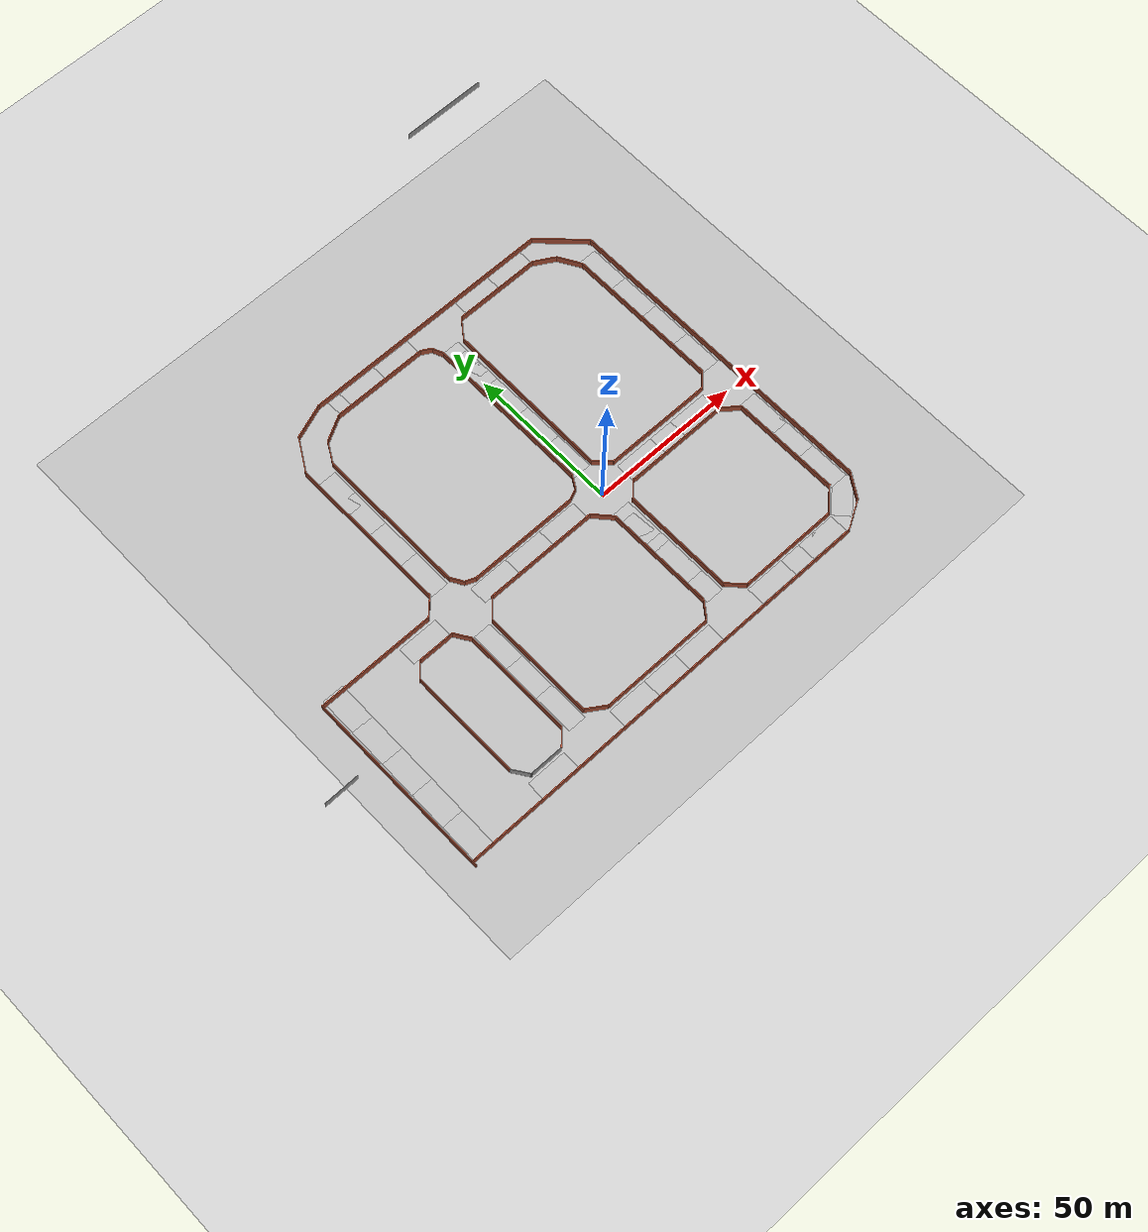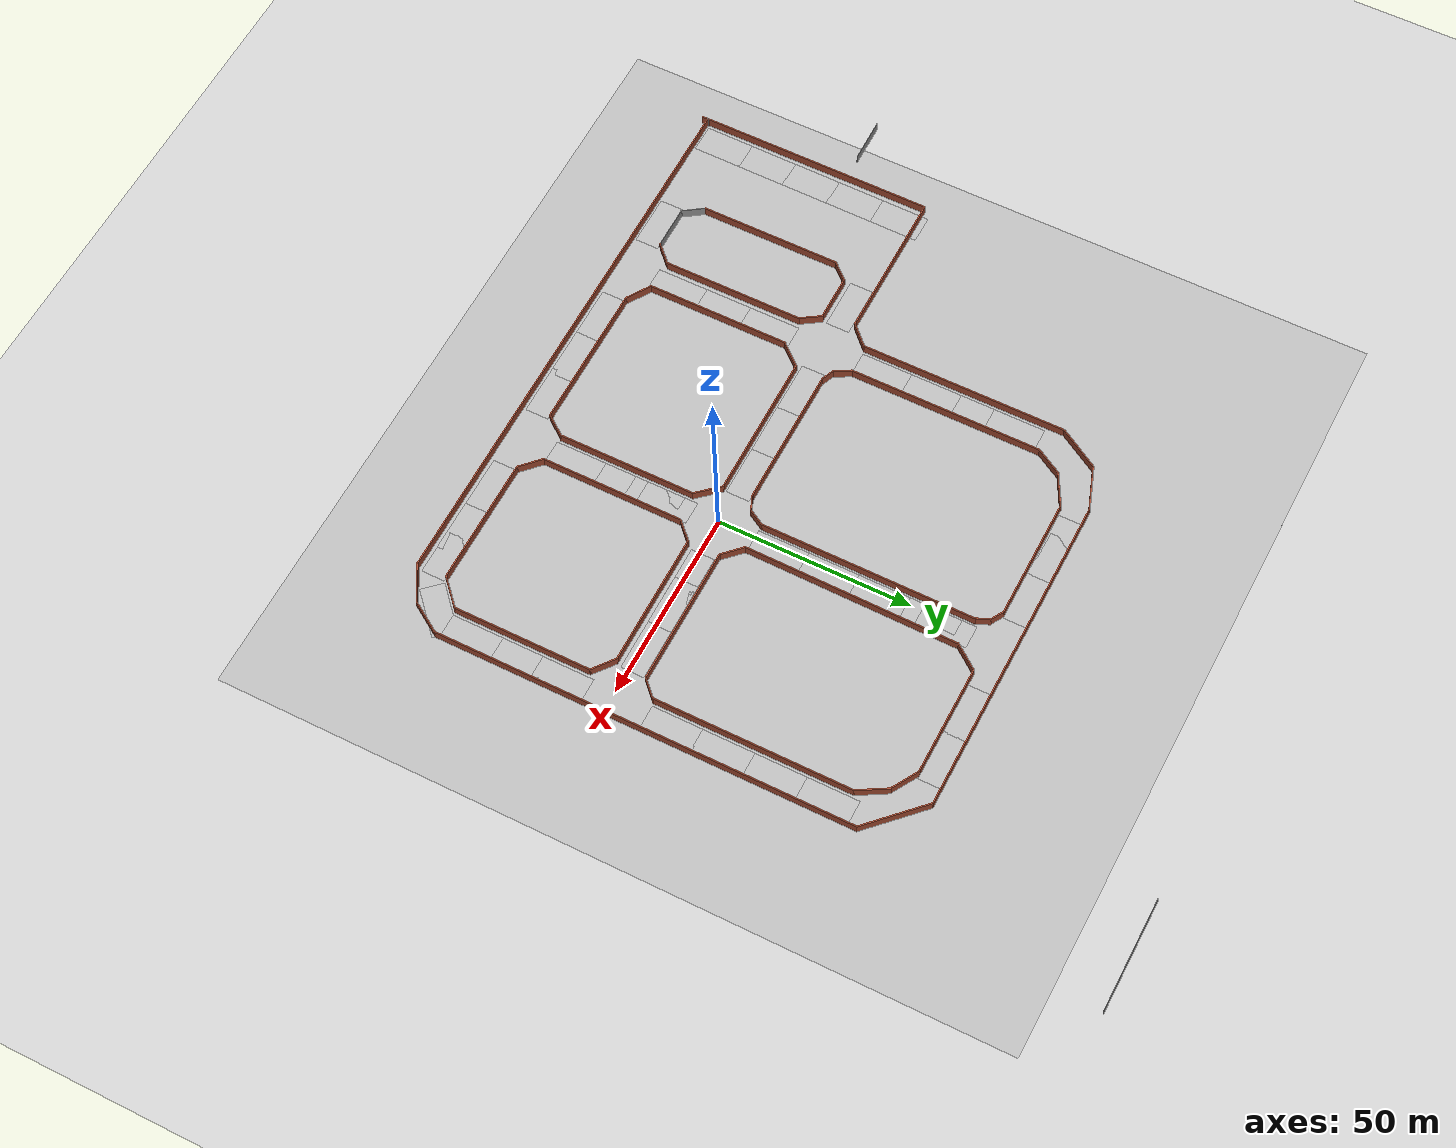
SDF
<sdf version="1.6">
 <world name="default">
  <light name="sun" type="directional">
   <pose>0 0 10 0 -0 0</pose>
   <diffuse>0.8 0.8 0.8 1</diffuse>
   <specular>0.2 0.2 0.2 1</specular>
   <attenuation>
    <range>1000</range>
    <constant>0.9</constant>
    <linear>0.01</linear>
    <quadratic>0.001</quadratic>
   </attenuation>
   <direction>-0.5 0.1 -0.9</direction>
  </light>
  <model name="ground_plane">
   <pose>0 0 -1 0 -0 0</pose>
   <static>1</static>
   <link name="link">
    <collision name="collision">
     <geometry><plane><normal>0 0 1</normal><size>100 100</size></plane></geometry>
     <surface><friction><ode><mu>100</mu><mu2>50</mu2></ode></friction></surface>
    </collision>
    <visual name="visual">
     <cast_shadows>0</cast_shadows>
     <geometry><plane><normal>0 0 1</normal><size>100 100</size></plane></geometry>
     <material>
      <script><uri>file://media/materials/scripts/gazebo.material</uri><name>Gazebo/Grey</name></script>
     </material>
    </visual>
   </link>
  </model>
  <gravity>0 0 -9.8</gravity>
  <magnetic_field>6e-06 2.3e-05 -4.2e-05</magnetic_field>
  <atmosphere type="adiabatic"/>
  <physics name="default_physics" default="0" type="ode">
   <max_step_size>0.001</max_step_size>
   <real_time_factor>1</real_time_factor>
   <real_time_update_rate>1000</real_time_update_rate>
  </physics>
  <scene><ambient>0.4 0.4 0.4 1</ambient><background>0.7 0.7 0.7 1</background><shadows>1</shadows></scene>
  <spherical_coordinates>
   <surface_model>EARTH_WGS84</surface_model>
   <latitude_deg>0</latitude_deg>
   <longitude_deg>0</longitude_deg>
   <elevation>0</elevation>
   <heading_deg>0</heading_deg>
  </spherical_coordinates>
  <model name="taksiYol">
   <pose>-24.3729 36.1774 0 0 -0 0</pose>
   <link name="Wall_10">
    <collision name="Wall_10_Collision">
     <geometry><box><size>18.0312 0.3 2.5</size></box></geometry>
     <pose>0 0 1.25 0 -0 0</pose>
    </collision>
    <visual name="Wall_10_Visual">
     <pose>0 0 1.25 0 -0 0</pose>
     <geometry><box><size>18.0312 0.3 2.5</size></box></geometry>
     <material>
      <script><uri>file://media/materials/scripts/gazebo.material</uri><name>Gazebo/Bricks</name></script>
      <ambient>0.760784 0.662745 0.627451 1</ambient>
     </material>
    </visual>
    <pose>74.2438 34.0389 0 0 0 -0.77802</pose>
   </link>
   <link name="Wall_100">
    <collision name="Wall_100_Collision">
     <geometry><box><size>28.6496 0.3 2.5</size></box></geometry>
     <pose>0 0 1.25 0 -0 0</pose>
    </collision>
    <visual name="Wall_100_Visual">
     <pose>0 0 1.25 0 -0 0</pose>
     <geometry><box><size>28.6496 0.3 2.5</size></box></geometry>
     <material>
      <script><uri>file://media/materials/scripts/gazebo.material</uri><name>Gazebo/Bricks</name></script>
      <ambient>0.760784 0.662745 0.627451 1</ambient>
     </material>
    </visual>
    <pose>48.1918 34.1744 0 0 -0 3.14068</pose>
   </link>
   <link name="Wall_102">
    <collision name="Wall_102_Collision">
     <geometry><box><size>6.3995 0.3 2.5</size></box></geometry>
     <pose>0 0 1.25 0 -0 0</pose>
    </collision>
    <visual name="Wall_102_Visual">
     <pose>0 0 1.25 0 -0 0</pose>
     <geometry><box><size>6.3995 0.3 2.5</size></box></geometry>
     <material>
      <script><uri>file://media/materials/scripts/gazebo.material</uri><name>Gazebo/Bricks</name></script>
      <ambient>0.760784 0.662745 0.627451 1</ambient>
     </material>
    </visual>
    <pose>-35.7537 -82.7531 0 0 -0 0.785398</pose>
   </link>
   <link name="Wall_103">
    <collision name="Wall_103_Collision">
     <geometry><box><size>36.349 0.3 2.5</size></box></geometry>
     <pose>0 0 1.25 0 -0 0</pose>
    </collision>
    <visual name="Wall_103_Visual">
     <pose>0 0 1.25 0 -0 0</pose>
     <geometry><box><size>36.349 0.3 2.5</size></box></geometry>
     <material>
      <script><uri>file://media/materials/scripts/gazebo.material</uri><name>Gazebo/Bricks</name></script>
      <ambient>0.760784 0.662745 0.627451 1</ambient>
     </material>
    </visual>
    <pose>-33.5972 -62.5721 0 0 -0 1.5708</pose>
   </link>
   <link name="Wall_104">
    <collision name="Wall_104_Collision">
     <geometry><box><size>6.02982 0.3 2.5</size></box></geometry>
     <pose>0 0 1.25 0 -0 0</pose>
    </collision>
    <visual name="Wall_104_Visual">
     <pose>0 0 1.25 0 -0 0</pose>
     <geometry><box><size>6.02982 0.3 2.5</size></box></geometry>
     <material>
      <script><uri>file://media/materials/scripts/gazebo.material</uri><name>Gazebo/Bricks</name></script>
      <ambient>0.760784 0.662745 0.627451 1</ambient>
     </material>
    </visual>
    <pose>-35.1517 -42.1411 0 0 -0 2.14432</pose>
   </link>
   <link name="Wall_106">
    <collision name="Wall_106_Collision">
     <geometry><box><size>12.2451 0.3 2.5</size></box></geometry>
     <pose>0 0 1.25 0 -0 0</pose>
    </collision>
    <visual name="Wall_106_Visual">
     <pose>0 0 1.25 0 -0 0</pose>
     <geometry><box><size>12.2451 0.3 2.5</size></box></geometry>
     <material>
      <script><uri>file://media/materials/scripts/gazebo.material</uri><name>Gazebo/Bricks</name></script>
      <ambient>0.760784 0.662745 0.627451 1</ambient>
     </material>
    </visual>
    <pose>-42.6787 -39.7341 0 0 0 -8.4e-05</pose>
   </link>
   <link name="Wall_19">
    <collision name="Wall_19_Collision">
     <geometry><box><size>144.415 0.3 2.5</size></box></geometry>
     <pose>0 0 1.25 0 -0 0</pose>
    </collision>
    <visual name="Wall_19_Visual">
     <pose>0 0 1.25 0 -0 0</pose>
     <geometry><box><size>144.415 0.3 2.5</size></box></geometry>
     <material>
      <script><uri>file://media/materials/scripts/gazebo.material</uri><name>Gazebo/Bricks</name></script>
      <ambient>0.760784 0.662745 0.627451 1</ambient>
     </material>
    </visual>
    <pose>-5.1646 -92.3029 0 0 0 -3.14128</pose>
   </link>
   <link name="Wall_2">
    <collision name="Wall_2_Collision">
     <geometry><box><size>62.289 0.3 2.5</size></box></geometry>
     <pose>0 0 1.25 0 -0 0</pose>
    </collision>
    <visual name="Wall_2_Visual">
     <pose>0 0 1.25 0 -0 0</pose>
     <geometry><box><size>62.289 0.3 2.5</size></box></geometry>
     <material>
      <script><uri>file://media/materials/scripts/gazebo.material</uri><name>Gazebo/Bricks</name></script>
      <ambient>0.760784 0.662745 0.627451 1</ambient>
     </material>
    </visual>
    <pose>-77.1823 -62.6861 0 0 -0 1.57079</pose>
   </link>
   <link name="Wall_20">
    <collision name="Wall_20_Collision">
     <geometry><box><size>0.388213 0.15 2.5</size></box></geometry>
     <pose>0 0 1.25 0 -0 0</pose>
    </collision>
    <visual name="Wall_20_Visual">
     <pose>0 0 1.25 0 -0 0</pose>
     <geometry><box><size>0.388213 0.15 2.5</size></box></geometry>
     <material>
      <script><uri>file://media/materials/scripts/gazebo.material</uri><name>Gazebo/Grey</name></script>
      <ambient>1 1 1 1</ambient>
     </material>
    </visual>
    <pose>-77.0291 -92.219 0 0 -0 1.10246</pose>
   </link>
   <link name="Wall_28">
    <collision name="Wall_28_Collision">
     <geometry><box><size>107.778 0.3 2.5</size></box></geometry>
     <pose>0 0 1.25 0 -0 0</pose>
    </collision>
    <visual name="Wall_28_Visual">
     <pose>0 0 1.25 0 -0 0</pose>
     <geometry><box><size>107.778 0.3 2.5</size></box></geometry>
     <material>
      <script><uri>file://media/materials/scripts/gazebo.material</uri><name>Gazebo/Bricks</name></script>
      <ambient>0.760784 0.662745 0.627451 1</ambient>
     </material>
    </visual>
    <pose>80.5423 -25.9226 0 0 -0 1.57049</pose>
   </link>
   <link name="Wall_30">
    <collision name="Wall_30_Collision">
     <geometry><box><size>12.1991 0.3 2.5</size></box></geometry>
     <pose>0 0 1.25 0 -0 0</pose>
    </collision>
    <visual name="Wall_30_Visual">
     <pose>0 0 1.25 0 -0 0</pose>
     <geometry><box><size>12.1991 0.3 2.5</size></box></geometry>
     <material>
      <script><uri>file://media/materials/scripts/gazebo.material</uri><name>Gazebo/Bricks</name></script>
      <ambient>0.760784 0.662745 0.627451 1</ambient>
     </material>
    </visual>
    <pose>-30.4626 31.2128 0 0 -0 1.03362</pose>
   </link>
   <link name="Wall_31">
    <collision name="Wall_31_Collision">
     <geometry><box><size>11.9805 0.3 2.5</size></box></geometry>
     <pose>0 0 1.25 0 -0 0</pose>
    </collision>
    <visual name="Wall_31_Visual">
     <pose>0 0 1.25 0 -0 0</pose>
     <geometry><box><size>11.9805 0.3 2.5</size></box></geometry>
     <material>
      <script><uri>file://media/materials/scripts/gazebo.material</uri><name>Gazebo/Bricks</name></script>
      <ambient>0.760784 0.662745 0.627451 1</ambient>
     </material>
    </visual>
    <pose>-21.9197 38.2929 0 0 -0 0.34379</pose>
   </link>
   <link name="Wall_33">
    <collision name="Wall_33_Collision">
     <geometry><box><size>31.9 0.3 2.5</size></box></geometry>
     <pose>0 0 1.25 0 -0 0</pose>
    </collision>
    <visual name="Wall_33_Visual">
     <pose>0 0 1.25 0 -0 0</pose>
     <geometry><box><size>31.9 0.3 2.5</size></box></geometry>
     <material>
      <script><uri>file://media/materials/scripts/gazebo.material</uri><name>Gazebo/Bricks</name></script>
      <ambient>0.760784 0.662745 0.627451 1</ambient>
     </material>
    </visual>
    <pose>1.55483 33.8794 0 0 -0 0</pose>
   </link>
   <link name="Wall_34">
    <collision name="Wall_34_Collision">
     <geometry><box><size>3.8606 0.3 2.5</size></box></geometry>
     <pose>0 0 1.25 0 -0 0</pose>
    </collision>
    <visual name="Wall_34_Visual">
     <pose>0 0 1.25 0 -0 0</pose>
     <geometry><box><size>3.8606 0.3 2.5</size></box></geometry>
     <material>
      <script><uri>file://media/materials/scripts/gazebo.material</uri><name>Gazebo/Bricks</name></script>
      <ambient>0.760784 0.662745 0.627451 1</ambient>
     </material>
    </visual>
    <pose>18.8908 32.9794 0 0 0 -0.530015</pose>
   </link>
   <link name="Wall_35">
    <collision name="Wall_35_Collision">
     <geometry><box><size>3.92162 0.3 2.5</size></box></geometry>
     <pose>0 0 1.25 0 -0 0</pose>
    </collision>
    <visual name="Wall_35_Visual">
     <pose>0 0 1.25 0 -0 0</pose>
     <geometry><box><size>3.92162 0.3 2.5</size></box></geometry>
     <material>
      <script><uri>file://media/materials/scripts/gazebo.material</uri><name>Gazebo/Bricks</name></script>
      <ambient>0.760784 0.662745 0.627451 1</ambient>
     </material>
    </visual>
    <pose>21.1248 30.4084 0 0 0 -1.17511</pose>
   </link>
   <link name="Wall_36">
    <collision name="Wall_36_Collision">
     <geometry><box><size>55.1498 0.3 2.5</size></box></geometry>
     <pose>0 0 1.25 0 -0 0</pose>
    </collision>
    <visual name="Wall_36_Visual">
     <pose>0 0 1.25 0 -0 0</pose>
     <geometry><box><size>55.1498 0.3 2.5</size></box></geometry>
     <material>
      <script><uri>file://media/materials/scripts/gazebo.material</uri><name>Gazebo/Bricks</name></script>
      <ambient>0.760784 0.662745 0.627451 1</ambient>
     </material>
    </visual>
    <pose>21.7828 1.3124 0 0 0 -1.57225</pose>
   </link>
   <link name="Wall_37">
    <collision name="Wall_37_Collision">
     <geometry><box><size>4.90024 0.3 2.5</size></box></geometry>
     <pose>0 0 1.25 0 -0 0</pose>
    </collision>
    <visual name="Wall_37_Visual">
     <pose>0 0 1.25 0 -0 0</pose>
     <geometry><box><size>4.90024 0.3 2.5</size></box></geometry>
     <material>
      <script><uri>file://media/materials/scripts/gazebo.material</uri><name>Gazebo/Bricks</name></script>
      <ambient>0.760784 0.662745 0.627451 1</ambient>
     </material>
    </visual>
    <pose>20.5928 -28.1046 0 0 0 -2.09436</pose>
   </link>
   <link name="Wall_38">
    <collision name="Wall_38_Collision">
     <geometry><box><size>4.21544 0.3 2.5</size></box></geometry>
     <pose>0 0 1.25 0 -0 0</pose>
    </collision>
    <visual name="Wall_38_Visual">
     <pose>0 0 1.25 0 -0 0</pose>
     <geometry><box><size>4.21544 0.3 2.5</size></box></geometry>
     <material>
      <script><uri>file://media/materials/scripts/gazebo.material</uri><name>Gazebo/Bricks</name></script>
      <ambient>0.760784 0.662745 0.627451 1</ambient>
     </material>
    </visual>
    <pose>17.6418 -30.8641 0 0 0 -2.73875</pose>
   </link>
   <link name="Wall_39">
    <collision name="Wall_39_Collision">
     <geometry><box><size>36.6502 0.3 2.5</size></box></geometry>
     <pose>0 0 1.25 0 -0 0</pose>
    </collision>
    <visual name="Wall_39_Visual">
     <pose>0 0 1.25 0 -0 0</pose>
     <geometry><box><size>36.6502 0.3 2.5</size></box></geometry>
     <material>
      <script><uri>file://media/materials/scripts/gazebo.material</uri><name>Gazebo/Bricks</name></script>
      <ambient>0.760784 0.662745 0.627451 1</ambient>
     </material>
    </visual>
    <pose>-2.33417 -31.6316 0 0 -0 3.14159</pose>
   </link>
   <link name="Wall_40">
    <collision name="Wall_40_Collision">
     <geometry><box><size>3.68766 0.3 2.5</size></box></geometry>
     <pose>0 0 1.25 0 -0 0</pose>
    </collision>
    <visual name="Wall_40_Visual">
     <pose>0 0 1.25 0 -0 0</pose>
     <geometry><box><size>3.68766 0.3 2.5</size></box></geometry>
     <material>
      <script><uri>file://media/materials/scripts/gazebo.material</uri><name>Gazebo/Bricks</name></script>
      <ambient>0.760784 0.662745 0.627451 1</ambient>
     </material>
    </visual>
    <pose>-22.0652 -30.9621 0 0 -0 2.73527</pose>
   </link>
   <link name="Wall_41">
    <collision name="Wall_41_Collision">
     <geometry><box><size>4.90013 0.3 2.5</size></box></geometry>
     <pose>0 0 1.25 0 -0 0</pose>
    </collision>
    <visual name="Wall_41_Visual">
     <pose>0 0 1.25 0 -0 0</pose>
     <geometry><box><size>4.90013 0.3 2.5</size></box></geometry>
     <material>
      <script><uri>file://media/materials/scripts/gazebo.material</uri><name>Gazebo/Bricks</name></script>
      <ambient>0.760784 0.662745 0.627451 1</ambient>
     </material>
    </visual>
    <pose>-24.7712 -28.3006 0 0 -0 2.09436</pose>
   </link>
   <link name="Wall_42">
    <collision name="Wall_42_Collision">
     <geometry><box><size>49.6501 0.3 2.5</size></box></geometry>
     <pose>0 0 1.25 0 -0 0</pose>
    </collision>
    <visual name="Wall_42_Visual">
     <pose>0 0 1.25 0 -0 0</pose>
     <geometry><box><size>49.6501 0.3 2.5</size></box></geometry>
     <material>
      <script><uri>file://media/materials/scripts/gazebo.material</uri><name>Gazebo/Bricks</name></script>
      <ambient>0.760784 0.662745 0.627451 1</ambient>
     </material>
    </visual>
    <pose>-25.9212 -1.6336 0 0 -0 1.5708</pose>
   </link>
   <link name="Wall_43">
    <collision name="Wall_43_Collision">
     <geometry><box><size>7.90018 0.3 2.5</size></box></geometry>
     <pose>0 0 1.25 0 -0 0</pose>
    </collision>
    <visual name="Wall_43_Visual">
     <pose>0 0 1.25 0 -0 0</pose>
     <geometry><box><size>7.90018 0.3 2.5</size></box></geometry>
     <material>
      <script><uri>file://media/materials/scripts/gazebo.material</uri><name>Gazebo/Bricks</name></script>
      <ambient>0.760784 0.662745 0.627451 1</ambient>
     </material>
    </visual>
    <pose>-24.0212 26.3324 0 0 -0 1.04721</pose>
   </link>
   <link name="Wall_44">
    <collision name="Wall_44_Collision">
     <geometry><box><size>9.25237 0.3 2.5</size></box></geometry>
     <pose>0 0 1.25 0 -0 0</pose>
    </collision>
    <visual name="Wall_44_Visual">
     <pose>0 0 1.25 0 -0 0</pose>
     <geometry><box><size>9.25237 0.3 2.5</size></box></geometry>
     <material>
      <script><uri>file://media/materials/scripts/gazebo.material</uri><name>Gazebo/Bricks</name></script>
      <ambient>0.760784 0.662745 0.627451 1</ambient>
     </material>
    </visual>
    <pose>-18.1832 31.7514 0 0 -0 0.495424</pose>
   </link>
   <link name="Wall_48">
    <collision name="Wall_48_Collision">
     <geometry><box><size>11.7505 0.15 2.5</size></box></geometry>
     <pose>0 0 1.25 0 -0 0</pose>
    </collision>
    <visual name="Wall_48_Visual">
     <pose>0 0 1.25 0 -0 0</pose>
     <geometry><box><size>11.7505 0.15 2.5</size></box></geometry>
     <material>
      <script><uri>file://media/materials/scripts/gazebo.material</uri><name>Gazebo/Grey</name></script>
      <ambient>1 1 1 1</ambient>
     </material>
    </visual>
    <pose>-89.3267 -53.5426 0 0 -0 0.008844</pose>
   </link>
   <link name="Wall_52">
    <collision name="Wall_52_Collision">
     <geometry><box><size>11.25 0.15 2.5</size></box></geometry>
     <pose>0 0 1.25 0 -0 0</pose>
    </collision>
    <visual name="Wall_52_Visual">
     <pose>0 0 1.25 0 -0 0</pose>
     <geometry><box><size>11.25 0.15 2.5</size></box></geometry>
     <material>
      <script><uri>file://media/materials/scripts/gazebo.material</uri><name>Gazebo/Grey</name></script>
      <ambient>1 1 1 1</ambient>
     </material>
    </visual>
    <pose>-43.4601 -84.9096 0 0 0 -3.14159</pose>
   </link>
   <link name="Wall_53">
    <collision name="Wall_53_Collision">
     <geometry><box><size>6.25105 0.15 2.5</size></box></geometry>
     <pose>0 0 1.25 0 -0 0</pose>
    </collision>
    <visual name="Wall_53_Visual">
     <pose>0 0 1.25 0 -0 0</pose>
     <geometry><box><size>6.25105 0.15 2.5</size></box></geometry>
     <material>
      <script><uri>file://media/materials/scripts/gazebo.material</uri><name>Gazebo/Grey</name></script>
      <ambient>1 1 1 1</ambient>
     </material>
    </visual>
    <pose>-50.6298 -82.4944 0 0 -0 2.17074</pose>
   </link>
   <link name="Wall_54">
    <collision name="Wall_54_Collision">
     <geometry><box><size>36.4 0.3 2.5</size></box></geometry>
     <pose>0 0 1.25 0 -0 0</pose>
    </collision>
    <visual name="Wall_54_Visual">
     <pose>0 0 1.25 0 -0 0</pose>
     <geometry><box><size>36.4 0.3 2.5</size></box></geometry>
     <material>
      <script><uri>file://media/materials/scripts/gazebo.material</uri><name>Gazebo/Bricks</name></script>
      <ambient>0.760784 0.662745 0.627451 1</ambient>
     </material>
    </visual>
    <pose>-52.3522 -61.9266 0 0 -0 1.5708</pose>
   </link>
   <link name="Wall_55">
    <collision name="Wall_55_Collision">
     <geometry><box><size>5.85534 0.3 2.5</size></box></geometry>
     <pose>0 0 1.25 0 -0 0</pose>
    </collision>
    <visual name="Wall_55_Visual">
     <pose>0 0 1.25 0 -0 0</pose>
     <geometry><box><size>5.85534 0.3 2.5</size></box></geometry>
     <material>
      <script><uri>file://media/materials/scripts/gazebo.material</uri><name>Gazebo/Bricks</name></script>
      <ambient>0.760784 0.662745 0.627451 1</ambient>
     </material>
    </visual>
    <pose>-50.5017 -41.8051 0 0 -0 0.841687</pose>
   </link>
   <link name="Wall_57">
    <collision name="Wall_57_Collision">
     <geometry><box><size>37.9 0.3 2.5</size></box></geometry>
     <pose>0 0 1.25 0 -0 0</pose>
    </collision>
    <visual name="Wall_57_Visual">
     <pose>0 0 1.25 0 -0 0</pose>
     <geometry><box><size>37.9 0.3 2.5</size></box></geometry>
     <material>
      <script><uri>file://media/materials/scripts/gazebo.material</uri><name>Gazebo/Bricks</name></script>
      <ambient>0.760784 0.662745 0.627451 1</ambient>
     </material>
    </visual>
    <pose>-2.17517 -38.8776 0 0 -0 0</pose>
   </link>
   <link name="Wall_58">
    <collision name="Wall_58_Collision">
     <geometry><box><size>7.63118 0.3 2.5</size></box></geometry>
     <pose>0 0 1.25 0 -0 0</pose>
    </collision>
    <visual name="Wall_58_Visual">
     <pose>0 0 1.25 0 -0 0</pose>
     <geometry><box><size>7.63118 0.3 2.5</size></box></geometry>
     <material>
      <script><uri>file://media/materials/scripts/gazebo.material</uri><name>Gazebo/Bricks</name></script>
      <ambient>0.760784 0.662745 0.627451 1</ambient>
     </material>
    </visual>
    <pose>19.0648 -41.6131 0 0 0 -0.842432</pose>
   </link>
   <link name="Wall_59">
    <collision name="Wall_59_Collision">
     <geometry><box><size>35.65 0.3 2.5</size></box></geometry>
     <pose>0 0 1.25 0 -0 0</pose>
    </collision>
    <visual name="Wall_59_Visual">
     <pose>0 0 1.25 0 -0 0</pose>
     <geometry><box><size>35.65 0.3 2.5</size></box></geometry>
     <material>
      <script><uri>file://media/materials/scripts/gazebo.material</uri><name>Gazebo/Bricks</name></script>
      <ambient>0.760784 0.662745 0.627451 1</ambient>
     </material>
    </visual>
    <pose>21.5048 -62.0236 0 0 0 -1.5708</pose>
   </link>
   <link name="Wall_60">
    <collision name="Wall_60_Collision">
     <geometry><box><size>6.64794 0.3 2.5</size></box></geometry>
     <pose>0 0 1.25 0 -0 0</pose>
    </collision>
    <visual name="Wall_60_Visual">
     <pose>0 0 1.25 0 -0 0</pose>
     <geometry><box><size>6.64794 0.3 2.5</size></box></geometry>
     <material>
      <script><uri>file://media/materials/scripts/gazebo.material</uri><name>Gazebo/Bricks</name></script>
      <ambient>0.760784 0.662745 0.627451 1</ambient>
     </material>
    </visual>
    <pose>19.5738 -82.2176 0 0 0 -2.22482</pose>
   </link>
   <link name="Wall_61">
    <collision name="Wall_61_Collision">
     <geometry><box><size>37.8997 0.3 2.5</size></box></geometry>
     <pose>0 0 1.25 0 -0 0</pose>
    </collision>
    <visual name="Wall_61_Visual">
     <pose>0 0 1.25 0 -0 0</pose>
     <geometry><box><size>37.8997 0.3 2.5</size></box></geometry>
     <material>
      <script><uri>file://media/materials/scripts/gazebo.material</uri><name>Gazebo/Bricks</name></script>
      <ambient>0.760784 0.662745 0.627451 1</ambient>
     </material>
    </visual>
    <pose>-1.15717 -84.7166 0 0 -0 3.14053</pose>
   </link>
   <link name="Wall_62">
    <collision name="Wall_62_Collision">
     <geometry><box><size>7.28015 0.3 2.5</size></box></geometry>
     <pose>0 0 1.25 0 -0 0</pose>
    </collision>
    <visual name="Wall_62_Visual">
     <pose>0 0 1.25 0 -0 0</pose>
     <geometry><box><size>7.28015 0.3 2.5</size></box></geometry>
     <material>
      <script><uri>file://media/materials/scripts/gazebo.material</uri><name>Gazebo/Bricks</name></script>
      <ambient>0.760784 0.662745 0.627451 1</ambient>
     </material>
    </visual>
    <pose>-22.8797 -82.7886 0 0 -0 2.56321</pose>
   </link>
   <link name="Wall_63">
    <collision name="Wall_63_Collision">
     <geometry><box><size>36.8614 0.3 2.5</size></box></geometry>
     <pose>0 0 1.25 0 -0 0</pose>
    </collision>
    <visual name="Wall_63_Visual">
     <pose>0 0 1.25 0 -0 0</pose>
     <geometry><box><size>36.8614 0.3 2.5</size></box></geometry>
     <material>
      <script><uri>file://media/materials/scripts/gazebo.material</uri><name>Gazebo/Bricks</name></script>
      <ambient>0.760784 0.662745 0.627451 1</ambient>
     </material>
    </visual>
    <pose>-25.8022 -62.6001 0 0 -0 1.5708</pose>
   </link>
   <link name="Wall_64">
    <collision name="Wall_64_Collision">
     <geometry><box><size>7.49247 0.3 2.5</size></box></geometry>
     <pose>0 0 1.25 0 -0 0</pose>
    </collision>
    <visual name="Wall_64_Visual">
     <pose>0 0 1.25 0 -0 0</pose>
     <geometry><box><size>7.49247 0.3 2.5</size></box></geometry>
     <material>
      <script><uri>file://media/materials/scripts/gazebo.material</uri><name>Gazebo/Bricks</name></script>
      <ambient>0.760784 0.662745 0.627451 1</ambient>
     </material>
    </visual>
    <pose>-23.4307 -41.6161 0 0 -0 0.850724</pose>
   </link>
   <link name="Wall_69">
    <collision name="Wall_69_Collision">
     <geometry><box><size>39.15 0.3 2.5</size></box></geometry>
     <pose>0 0 1.25 0 -0 0</pose>
    </collision>
    <visual name="Wall_69_Visual">
     <pose>0 0 1.25 0 -0 0</pose>
     <geometry><box><size>39.15 0.3 2.5</size></box></geometry>
     <material>
      <script><uri>file://media/materials/scripts/gazebo.material</uri><name>Gazebo/Bricks</name></script>
      <ambient>0.760784 0.662745 0.627451 1</ambient>
     </material>
    </visual>
    <pose>-57.7572 -31.6916 0 0 -0 0</pose>
   </link>
   <link name="Wall_70">
    <collision name="Wall_70_Collision">
     <geometry><box><size>7.12222 0.3 2.5</size></box></geometry>
     <pose>0 0 1.25 0 -0 0</pose>
    </collision>
    <visual name="Wall_70_Visual">
     <pose>0 0 1.25 0 -0 0</pose>
     <geometry><box><size>7.12222 0.3 2.5</size></box></geometry>
     <material>
      <script><uri>file://media/materials/scripts/gazebo.material</uri><name>Gazebo/Bricks</name></script>
      <ambient>0.760784 0.662745 0.627451 1</ambient>
     </material>
    </visual>
    <pose>-35.9107 -29.2891 0 0 -0 0.78146</pose>
   </link>
   <link name="Wall_72">
    <collision name="Wall_72_Collision">
     <geometry><box><size>53.2861 0.3 2.5</size></box></geometry>
     <pose>0 0 1.25 0 -0 0</pose>
    </collision>
    <visual name="Wall_72_Visual">
     <pose>0 0 1.25 0 -0 0</pose>
     <geometry><box><size>53.2861 0.3 2.5</size></box></geometry>
     <material>
      <script><uri>file://media/materials/scripts/gazebo.material</uri><name>Gazebo/Bricks</name></script>
      <ambient>0.760784 0.662745 0.627451 1</ambient>
     </material>
    </visual>
    <pose>-33.5187 -0.393597 0 0 -0 1.57191</pose>
   </link>
   <link name="Wall_73">
    <collision name="Wall_73_Collision">
     <geometry><box><size>0.181339 0.15 2.5</size></box></geometry>
     <pose>0 0 1.25 0 -0 0</pose>
    </collision>
    <visual name="Wall_73_Visual">
     <pose>0 0 1.25 0 -0 0</pose>
     <geometry><box><size>0.181339 0.15 2.5</size></box></geometry>
     <material>
      <script><uri>file://media/materials/scripts/gazebo.material</uri><name>Gazebo/Grey</name></script>
      <ambient>1 1 1 1</ambient>
     </material>
    </visual>
    <pose>-33.5434 26.0845 0 0 0 -1.25908</pose>
   </link>
   <link name="Wall_75">
    <collision name="Wall_75_Collision">
     <geometry><box><size>34.6499 0.3 2.5</size></box></geometry>
     <pose>0 0 1.25 0 -0 0</pose>
    </collision>
    <visual name="Wall_75_Visual">
     <pose>0 0 1.25 0 -0 0</pose>
     <geometry><box><size>34.6499 0.3 2.5</size></box></geometry>
     <material>
      <script><uri>file://media/materials/scripts/gazebo.material</uri><name>Gazebo/Bricks</name></script>
      <ambient>0.760784 0.662745 0.627451 1</ambient>
     </material>
    </visual>
    <pose>50.6358 -39.2886 0 0 -0 0</pose>
   </link>
   <link name="Wall_76">
    <collision name="Wall_76_Collision">
     <geometry><box><size>6.94108 0.3 2.5</size></box></geometry>
     <pose>0 0 1.25 0 -0 0</pose>
    </collision>
    <visual name="Wall_76_Visual">
     <pose>0 0 1.25 0 -0 0</pose>
     <geometry><box><size>6.94108 0.3 2.5</size></box></geometry>
     <material>
      <script><uri>file://media/materials/scripts/gazebo.material</uri><name>Gazebo/Bricks</name></script>
      <ambient>0.760784 0.662745 0.627451 1</ambient>
     </material>
    </visual>
    <pose>70.4218 -41.3401 0 0 0 -0.665969</pose>
   </link>
   <link name="Wall_77">
    <collision name="Wall_77_Collision">
     <geometry><box><size>35.65 0.3 2.5</size></box></geometry>
     <pose>0 0 1.25 0 -0 0</pose>
    </collision>
    <visual name="Wall_77_Visual">
     <pose>0 0 1.25 0 -0 0</pose>
     <geometry><box><size>35.65 0.3 2.5</size></box></geometry>
     <material>
      <script><uri>file://media/materials/scripts/gazebo.material</uri><name>Gazebo/Bricks</name></script>
      <ambient>0.760784 0.662745 0.627451 1</ambient>
     </material>
    </visual>
    <pose>73.0328 -61.0666 0 0 0 -1.5708</pose>
   </link>
   <link name="Wall_78">
    <collision name="Wall_78_Collision">
     <geometry><box><size>8.98794 0.3 2.5</size></box></geometry>
     <pose>0 0 1.25 0 -0 0</pose>
    </collision>
    <visual name="Wall_78_Visual">
     <pose>0 0 1.25 0 -0 0</pose>
     <geometry><box><size>8.98794 0.3 2.5</size></box></geometry>
     <material>
      <script><uri>file://media/materials/scripts/gazebo.material</uri><name>Gazebo/Bricks</name></script>
      <ambient>0.760784 0.662745 0.627451 1</ambient>
     </material>
    </visual>
    <pose>69.8698 -81.7191 0 0 0 -2.38639</pose>
   </link>
   <link name="Wall_79">
    <collision name="Wall_79_Collision">
     <geometry><box><size>33.225 0.3 2.5</size></box></geometry>
     <pose>0 0 1.25 0 -0 0</pose>
    </collision>
    <visual name="Wall_79_Visual">
     <pose>0 0 1.25 0 -0 0</pose>
     <geometry><box><size>33.225 0.3 2.5</size></box></geometry>
     <material>
      <script><uri>file://media/materials/scripts/gazebo.material</uri><name>Gazebo/Bricks</name></script>
      <ambient>0.760784 0.662745 0.627451 1</ambient>
     </material>
    </visual>
    <pose>50.2443 -84.6666 0 0 -0 3.13977</pose>
   </link>
   <link name="Wall_80">
    <collision name="Wall_80_Collision">
     <geometry><box><size>6.88701 0.3 2.5</size></box></geometry>
     <pose>0 0 1.25 0 -0 0</pose>
    </collision>
    <visual name="Wall_80_Visual">
     <pose>0 0 1.25 0 -0 0</pose>
     <geometry><box><size>6.88701 0.3 2.5</size></box></geometry>
     <material>
      <script><uri>file://media/materials/scripts/gazebo.material</uri><name>Gazebo/Bricks</name></script>
      <ambient>0.760784 0.662745 0.627451 1</ambient>
     </material>
    </visual>
    <pose>31.4123 -82.3491 0 0 -0 2.3738</pose>
   </link>
   <link name="Wall_81">
    <collision name="Wall_81_Collision">
     <geometry><box><size>36.867 0.3 2.5</size></box></geometry>
     <pose>0 0 1.25 0 -0 0</pose>
    </collision>
    <visual name="Wall_81_Visual">
     <pose>0 0 1.25 0 -0 0</pose>
     <geometry><box><size>36.867 0.3 2.5</size></box></geometry>
     <material>
      <script><uri>file://media/materials/scripts/gazebo.material</uri><name>Gazebo/Bricks</name></script>
      <ambient>0.760784 0.662745 0.627451 1</ambient>
     </material>
    </visual>
    <pose>29.0728 -61.7781 0 0 -0 1.56916</pose>
   </link>
   <link name="Wall_82">
    <collision name="Wall_82_Collision">
     <geometry><box><size>6.36848 0.3 2.5</size></box></geometry>
     <pose>0 0 1.25 0 -0 0</pose>
    </collision>
    <visual name="Wall_82_Visual">
     <pose>0 0 1.25 0 -0 0</pose>
     <geometry><box><size>6.36848 0.3 2.5</size></box></geometry>
     <material>
      <script><uri>file://media/materials/scripts/gazebo.material</uri><name>Gazebo/Bricks</name></script>
      <ambient>0.760784 0.662745 0.627451 1</ambient>
     </material>
    </visual>
    <pose>31.2598 -41.3606 0 0 -0 0.780038</pose>
   </link>
   <link name="Wall_86">
    <collision name="Wall_86_Collision">
     <geometry><box><size>29 0.15 2.5</size></box></geometry>
     <pose>0 0 1.25 0 -0 0</pose>
    </collision>
    <visual name="Wall_86_Visual">
     <pose>0 0 1.25 0 -0 0</pose>
     <geometry><box><size>29 0.15 2.5</size></box></geometry>
     <material>
      <script><uri>file://media/materials/scripts/gazebo.material</uri><name>Gazebo/Grey</name></script>
      <ambient>1 1 1 1</ambient>
     </material>
    </visual>
    <pose>80.7024 93.7556 0 0 -0 0</pose>
   </link>
   <link name="Wall_88">
    <collision name="Wall_88_Collision">
     <geometry><box><size>8.4071 0.3 2.5</size></box></geometry>
     <pose>0 0 1.25 0 -0 0</pose>
    </collision>
    <visual name="Wall_88_Visual">
     <pose>0 0 1.25 0 -0 0</pose>
     <geometry><box><size>8.4071 0.3 2.5</size></box></geometry>
     <material>
      <script><uri>file://media/materials/scripts/gazebo.material</uri><name>Gazebo/Bricks</name></script>
      <ambient>0.760784 0.662745 0.627451 1</ambient>
     </material>
    </visual>
    <pose>70.9738 26.8239 0 0 0 -1.0477</pose>
   </link>
   <link name="Wall_89">
    <collision name="Wall_89_Collision">
     <geometry><box><size>50.874 0.3 2.5</size></box></geometry>
     <pose>0 0 1.25 0 -0 0</pose>
    </collision>
    <visual name="Wall_89_Visual">
     <pose>0 0 1.25 0 -0 0</pose>
     <geometry><box><size>50.874 0.3 2.5</size></box></geometry>
     <material>
      <script><uri>file://media/materials/scripts/gazebo.material</uri><name>Gazebo/Bricks</name></script>
      <ambient>0.760784 0.662745 0.627451 1</ambient>
     </material>
    </visual>
    <pose>72.9988 -1.9746 0 0 0 -1.5708</pose>
   </link>
   <link name="Wall_9">
    <collision name="Wall_9_Collision">
     <geometry><box><size>84.65 0.3 2.5</size></box></geometry>
     <pose>0 0 1.25 0 -0 0</pose>
    </collision>
    <visual name="Wall_9_Visual">
     <pose>0 0 1.25 0 -0 0</pose>
     <geometry><box><size>84.65 0.3 2.5</size></box></geometry>
     <material>
      <script><uri>file://media/materials/scripts/gazebo.material</uri><name>Gazebo/Bricks</name></script>
      <ambient>0.760784 0.662745 0.627451 1</ambient>
     </material>
    </visual>
    <pose>25.7538 40.2614 0 0 -0 0</pose>
   </link>
   <link name="Wall_90">
    <collision name="Wall_90_Collision">
     <geometry><box><size>5.8763 0.3 2.5</size></box></geometry>
     <pose>0 0 1.25 0 -0 0</pose>
    </collision>
    <visual name="Wall_90_Visual">
     <pose>0 0 1.25 0 -0 0</pose>
     <geometry><box><size>5.8763 0.3 2.5</size></box></geometry>
     <material>
      <script><uri>file://media/materials/scripts/gazebo.material</uri><name>Gazebo/Bricks</name></script>
      <ambient>0.760784 0.662745 0.627451 1</ambient>
     </material>
    </visual>
    <pose>71.0188 -29.2246 0 0 0 -2.36051</pose>
   </link>
   <link name="Wall_91">
    <collision name="Wall_91_Collision">
     <geometry><box><size>36.0139 0.3 2.5</size></box></geometry>
     <pose>0 0 1.25 0 -0 0</pose>
    </collision>
    <visual name="Wall_91_Visual">
     <pose>0 0 1.25 0 -0 0</pose>
     <geometry><box><size>36.0139 0.3 2.5</size></box></geometry>
     <material>
      <script><uri>file://media/materials/scripts/gazebo.material</uri><name>Gazebo/Bricks</name></script>
      <ambient>0.760784 0.662745 0.627451 1</ambient>
     </material>
    </visual>
    <pose>51.1818 -31.1706 0 0 -0 3.14064</pose>
   </link>
   <link name="Wall_92">
    <collision name="Wall_92_Collision">
     <geometry><box><size>6.64996 0.3 2.5</size></box></geometry>
     <pose>0 0 1.25 0 -0 0</pose>
    </collision>
    <visual name="Wall_92_Visual">
     <pose>0 0 1.25 0 -0 0</pose>
     <geometry><box><size>6.64996 0.3 2.5</size></box></geometry>
     <material>
      <script><uri>file://media/materials/scripts/gazebo.material</uri><name>Gazebo/Bricks</name></script>
      <ambient>0.760784 0.662745 0.627451 1</ambient>
     </material>
    </visual>
    <pose>31.0798 -28.9081 0 0 -0 2.35608</pose>
   </link>
   <link name="Wall_93">
    <collision name="Wall_93_Collision">
     <geometry><box><size>55.171 0.3 2.5</size></box></geometry>
     <pose>0 0 1.25 0 -0 0</pose>
    </collision>
    <visual name="Wall_93_Visual">
     <pose>0 0 1.25 0 -0 0</pose>
     <geometry><box><size>55.171 0.3 2.5</size></box></geometry>
     <material>
      <script><uri>file://media/materials/scripts/gazebo.material</uri><name>Gazebo/Bricks</name></script>
      <ambient>0.760784 0.662745 0.627451 1</ambient>
     </material>
    </visual>
    <pose>29.1208 0.771402 0 0 -0 1.56037</pose>
   </link>
   <link name="Wall_94">
    <collision name="Wall_94_Collision">
     <geometry><box><size>7.69044 0.3 2.5</size></box></geometry>
     <pose>0 0 1.25 0 -0 0</pose>
    </collision>
    <visual name="Wall_94_Visual">
     <pose>0 0 1.25 0 -0 0</pose>
     <geometry><box><size>7.69044 0.3 2.5</size></box></geometry>
     <material>
      <script><uri>file://media/materials/scripts/gazebo.material</uri><name>Gazebo/Bricks</name></script>
      <ambient>0.760784 0.662745 0.627451 1</ambient>
     </material>
    </visual>
    <pose>31.6453 31.1454 0 0 -0 0.920041</pose>
   </link>
   <link name="Wall_96">
    <collision name="Wall_96_Collision">
     <geometry><box><size>10.3703 0.3 2.5</size></box></geometry>
     <pose>0 0 1.25 0 -0 0</pose>
    </collision>
    <visual name="Wall_96_Visual">
     <pose>0 0 1.25 0 -0 0</pose>
     <geometry><box><size>10.3703 0.3 2.5</size></box></geometry>
     <material>
      <script><uri>file://media/materials/scripts/gazebo.material</uri><name>Gazebo/Bricks</name></script>
      <ambient>0.760784 0.662745 0.627451 1</ambient>
     </material>
    </visual>
    <pose>71.2663 -89.7856 0 0 -0 0.518432</pose>
   </link>
   <link name="Wall_97">
    <collision name="Wall_97_Collision">
     <geometry><box><size>9.35938 0.3 2.5</size></box></geometry>
     <pose>0 0 1.25 0 -0 0</pose>
    </collision>
    <visual name="Wall_97_Visual">
     <pose>0 0 1.25 0 -0 0</pose>
     <geometry><box><size>9.35938 0.3 2.5</size></box></geometry>
     <material>
      <script><uri>file://media/materials/scripts/gazebo.material</uri><name>Gazebo/Bricks</name></script>
      <ambient>0.760784 0.662745 0.627451 1</ambient>
     </material>
    </visual>
    <pose>78.0828 -83.4761 0 0 -0 1.00116</pose>
   </link>
   <link name="Wall_99">
    <collision name="Wall_99_Collision">
     <geometry><box><size>7.91321 0.3 2.5</size></box></geometry>
     <pose>0 0 1.25 0 -0 0</pose>
    </collision>
    <visual name="Wall_99_Visual">
     <pose>0 0 1.25 0 -0 0</pose>
     <geometry><box><size>7.91321 0.3 2.5</size></box></geometry>
     <material>
      <script><uri>file://media/materials/scripts/gazebo.material</uri><name>Gazebo/Bricks</name></script>
      <ambient>0.760784 0.662745 0.627451 1</ambient>
     </material>
    </visual>
    <pose>65.6578 32.2484 0 0 -0 2.61505</pose>
   </link>
   <static>1</static>
  </model>
  <model name="road">
   <link name="body">
    <visual name="visual">
     <geometry><mesh><uri>file://road.dae</uri></mesh></geometry>
     <material><shader type="pixel"/></material>
    </visual>
   </link>
   <static>1</static>
   <pose>0.980998 16.1846 0 0 -0 0</pose>
  </model>
  <model name="road_1">
   <link name="body">
    <visual name="visual">
     <geometry><mesh><uri>file://road.dae</uri></mesh></geometry>
     <material><shader type="pixel"/></material>
    </visual>
   </link>
   <static>1</static>
   <pose>1.0181 42.2978 0 0 -0 0</pose>
  </model>
  <model name="road_2">
   <link name="body">
    <visual name="visual">
     <geometry><mesh><uri>file://road.dae</uri></mesh></geometry>
     <material><shader type="pixel"/></material>
    </visual>
   </link>
   <static>1</static>
   <pose>1.04905 55.4953 0 0 -0 0</pose>
  </model>
  <model name="road_3">
   <link name="body">
    <visual name="visual">
     <geometry><mesh><uri>file://road.dae</uri></mesh></geometry>
     <material><shader type="pixel"/></material>
    </visual>
   </link>
   <static>1</static>
   <pose>1.03683 59.2867 0 0 -0 0</pose>
  </model>
  <model name="road_0">
   <link name="body">
    <visual name="visual">
     <geometry><mesh><uri>file://road.dae</uri></mesh></geometry>
     <material><shader type="pixel"/></material>
    </visual>
   </link>
   <static>1</static>
   <pose>0.990078 29.3133 0 0 -0 0</pose>
  </model>
  <model name="road_4">
   <link name="body">
    <visual name="visual">
     <geometry><mesh><uri>file://road.dae</uri></mesh></geometry>
     <material><shader type="pixel"/></material>
    </visual>
   </link>
   <static>1</static>
   <pose>0.882038 -16.545 0 0 -0 0</pose>
  </model>
  <model name="road_5">
   <link name="body">
    <visual name="visual">
     <geometry><mesh><uri>file://road.dae</uri></mesh></geometry>
     <material><shader type="pixel"/></material>
    </visual>
   </link>
   <static>1</static>
   <pose>0.886692 -29.602 0 0 -0 0</pose>
  </model>
  <model name="road_6">
   <link name="body">
    <visual name="visual">
     <geometry><mesh><uri>file://road.dae</uri></mesh></geometry>
     <material><shader type="pixel"/></material>
    </visual>
   </link>
   <static>1</static>
   <pose>0.897447 -37.6376 0 0 -0 0</pose>
  </model>
  <model name="road_4_clone_clone">
   <link name="body">
    <visual name="visual">
     <geometry><mesh><uri>file://road.dae</uri></mesh></geometry>
     <material><shader type="pixel"/></material>
    </visual>
   </link>
   <static>1</static>
   <pose>37.3595 0.974527 0 0 -0 1.57</pose>
  </model>
  <model name="road_4_clone_clone_0">
   <link name="body">
    <visual name="visual">
     <geometry><mesh><uri>file://road.dae</uri></mesh></geometry>
     <material><shader type="pixel"/></material>
    </visual>
   </link>
   <static>1</static>
   <pose>24.265 0.952006 0 0 -0 1.57</pose>
  </model>
  <model name="road_4_clone_clone_1">
   <link name="body">
    <visual name="visual">
     <geometry><mesh><uri>file://road.dae</uri></mesh></geometry>
     <material><shader type="pixel"/></material>
    </visual>
   </link>
   <static>1</static>
   <pose>16.1017 0.938572 0 0 -0 1.57</pose>
  </model>
  <model name="road_4_clone_clone_1_clone">
   <link name="body">
    <visual name="visual">
     <geometry><mesh><uri>file://road.dae</uri></mesh></geometry>
     <material><shader type="pixel"/></material>
    </visual>
   </link>
   <static>1</static>
   <pose>-14.6376 0.870939 0 0 -0 1.57</pose>
  </model>
  <model name="road_4_clone_clone_1_clone_0">
   <link name="body">
    <visual name="visual">
     <geometry><mesh><uri>file://road.dae</uri></mesh></geometry>
     <material><shader type="pixel"/></material>
    </visual>
   </link>
   <static>1</static>
   <pose>-27.7601 0.868153 0 0 -0 1.57</pose>
  </model>
  <model name="road_4_clone_clone_1_clone_1">
   <link name="body">
    <visual name="visual">
     <geometry><mesh><uri>file://road.dae</uri></mesh></geometry>
     <material><shader type="pixel"/></material>
    </visual>
   </link>
   <static>1</static>
   <pose>-40.8713 0.896025 0 0 -0 1.57</pose>
  </model>
  <model name="road_4_clone_clone_1_clone_2">
   <link name="body">
    <visual name="visual">
     <geometry><mesh><uri>file://road.dae</uri></mesh></geometry>
     <material><shader type="pixel"/></material>
    </visual>
   </link>
   <static>1</static>
   <pose>-67.7579 0.529761 0 0 -0 1.57</pose>
  </model>
  <model name="road_4_clone_clone_1_clone_3">
   <link name="body">
    <visual name="visual">
     <geometry><mesh><uri>file://road.dae</uri></mesh></geometry>
     <material><shader type="pixel"/></material>
    </visual>
   </link>
   <static>1</static>
   <pose>-68.7257 -52.5495 0 0 -0 1.57</pose>
  </model>
  <model name="road_4_clone_clone_1_clone_4">
   <link name="body">
    <visual name="visual">
     <geometry><mesh><uri>file://road.dae</uri></mesh></geometry>
     <material><shader type="pixel"/></material>
    </visual>
   </link>
   <static>1</static>
   <pose>-38.1284 -52.3454 0 0 -0 1.57</pose>
  </model>
  <model name="road_4_clone_clone_1_clone_5">
   <link name="body">
    <visual name="visual">
     <geometry><mesh><uri>file://road.dae</uri></mesh></geometry>
     <material><shader type="pixel"/></material>
    </visual>
   </link>
   <static>1</static>
   <pose>-24.9965 -52.3596 0 0 -0 1.57</pose>
  </model>
  <model name="road_4_clone_clone_1_clone_6">
   <link name="body">
    <visual name="visual">
     <geometry><mesh><uri>file://road.dae</uri></mesh></geometry>
     <material><shader type="pixel"/></material>
    </visual>
   </link>
   <static>1</static>
   <pose>-13.2537 -52.379 0 0 -0 1.57</pose>
  </model>
  <model name="road_4_clone_clone_1_clone_7">
   <link name="body">
    <visual name="visual">
     <geometry><mesh><uri>file://road.dae</uri></mesh></geometry>
     <material><shader type="pixel"/></material>
    </visual>
   </link>
   <static>1</static>
   <pose>15.7241 -52.1418 0 0 -0 1.57</pose>
  </model>
  <model name="road_4_clone_clone_1_clone_8">
   <link name="body">
    <visual name="visual">
     <geometry><mesh><uri>file://road.dae</uri></mesh></geometry>
     <material><shader type="pixel"/></material>
    </visual>
   </link>
   <static>1</static>
   <pose>28.9006 -52.1734 0 0 -0 1.57</pose>
  </model>
  <model name="road_4_clone_clone_1_clone_9_clone_0">
   <link name="body">
    <visual name="visual">
     <geometry><mesh><uri>file://road.dae</uri></mesh></geometry>
     <material><shader type="pixel"/></material>
    </visual>
   </link>
   <static>1</static>
   <pose>36.0727 -52.1119 0 0 -0 1.57</pose>
  </model>
  <model name="road_4_clone">
   <link name="body">
    <visual name="visual">
     <geometry><mesh><uri>file://road.dae</uri></mesh></geometry>
     <material><shader type="pixel"/></material>
    </visual>
   </link>
   <static>1</static>
   <pose>52.4651 -36.1257 0.03 0 -0 0</pose>
  </model>
  <model name="road_4_clone_0">
   <link name="body">
    <visual name="visual">
     <geometry><mesh><uri>file://road.dae</uri></mesh></geometry>
     <material><shader type="pixel"/></material>
    </visual>
   </link>
   <static>1</static>
   <pose>52.4593 -23.2838 0 0 -0 0</pose>
  </model>
  <model name="road_4_clone_1">
   <link name="body">
    <visual name="visual">
     <geometry><mesh><uri>file://road.dae</uri></mesh></geometry>
     <material><shader type="pixel"/></material>
    </visual>
   </link>
   <static>1</static>
   <pose>52.4811 -12.4732 0 0 -0 0</pose>
  </model>
  <model name="road_4_clone_2">
   <link name="body">
    <visual name="visual">
     <geometry><mesh><uri>file://road.dae</uri></mesh></geometry>
     <material><shader type="pixel"/></material>
    </visual>
   </link>
   <static>1</static>
   <pose>52.4051 15.7075 0 0 -0 0</pose>
  </model>
  <model name="road_4_clone_3">
   <link name="body">
    <visual name="visual">
     <geometry><mesh><uri>file://road.dae</uri></mesh></geometry>
     <material><shader type="pixel"/></material>
    </visual>
   </link>
   <static>1</static>
   <pose>52.4117 28.5897 0 0 -0 0</pose>
  </model>
  <model name="road_4_clone_4">
   <link name="body">
    <visual name="visual">
     <geometry><mesh><uri>file://road.dae</uri></mesh></geometry>
     <material><shader type="pixel"/></material>
    </visual>
   </link>
   <static>1</static>
   <pose>52.4232 41.7004 0 0 -0 0</pose>
  </model>
  <model name="road_4_clone_5">
   <link name="body">
    <visual name="visual">
     <geometry><mesh><uri>file://road.dae</uri></mesh></geometry>
     <material><shader type="pixel"/></material>
    </visual>
   </link>
   <static>1</static>
   <pose>52.4065 54.872 0 0 -0 0</pose>
  </model>
  <model name="road_4_clone_6">
   <link name="body">
    <visual name="visual">
     <geometry><mesh><uri>file://road.dae</uri></mesh></geometry>
     <material><shader type="pixel"/></material>
    </visual>
   </link>
   <static>1</static>
   <pose>-54.1237 16.0365 0 0 -0 0</pose>
  </model>
  <model name="road_4_clone_7">
   <link name="body">
    <visual name="visual">
     <geometry><mesh><uri>file://road.dae</uri></mesh></geometry>
     <material><shader type="pixel"/></material>
    </visual>
   </link>
   <static>1</static>
   <pose>-54.1267 29.1356 0 0 -0 0</pose>
  </model>
  <model name="road_4_clone_8">
   <link name="body">
    <visual name="visual">
     <geometry><mesh><uri>file://road.dae</uri></mesh></geometry>
     <material><shader type="pixel"/></material>
    </visual>
   </link>
   <static>1</static>
   <pose>-54.1224 42.2951 0 0 -0 0</pose>
  </model>
  <model name="road_4_clone_9">
   <link name="body">
    <visual name="visual">
     <geometry><mesh><uri>file://road.dae</uri></mesh></geometry>
     <material><shader type="pixel"/></material>
    </visual>
   </link>
   <static>1</static>
   <pose>-54.107 51.0699 0 0 -0 0</pose>
  </model>
  <model name="road_4_clone_10">
   <link name="body">
    <visual name="visual">
     <geometry><mesh><uri>file://road.dae</uri></mesh></geometry>
     <material><shader type="pixel"/></material>
    </visual>
   </link>
   <static>1</static>
   <pose>-53.8389 -14.3432 0 0 -0 0</pose>
  </model>
  <model name="road_4_clone_11">
   <link name="body">
    <visual name="visual">
     <geometry><mesh><uri>file://road.dae</uri></mesh></geometry>
     <material><shader type="pixel"/></material>
    </visual>
   </link>
   <static>1</static>
   <pose>-53.8363 -27.4382 0 0 -0 0</pose>
  </model>
  <model name="road_4_clone_12">
   <link name="body">
    <visual name="visual">
     <geometry><mesh><uri>file://road.dae</uri></mesh></geometry>
     <material><shader type="pixel"/></material>
    </visual>
   </link>
   <static>1</static>
   <pose>-53.8109 -39.4833 0 0 -0 0</pose>
  </model>
  <model name="road_4_clone_clone_1_clone_9">
   <link name="body">
    <visual name="visual">
     <geometry><mesh><uri>file://road.dae</uri></mesh></geometry>
     <material><shader type="pixel"/></material>
    </visual>
   </link>
   <static>1</static>
   <pose>32.0391 73.3017 0 0 -0 1.57</pose>
  </model>
  <model name="road_4_clone_clone_1_clone_10">
   <link name="body">
    <visual name="visual">
     <geometry><mesh><uri>file://road.dae</uri></mesh></geometry>
     <material><shader type="pixel"/></material>
    </visual>
   </link>
   <static>1</static>
   <pose>19.0114 73.3023 0 0 -0 1.57</pose>
  </model>
  <model name="road_4_clone_clone_1_clone_11">
   <link name="body">
    <visual name="visual">
     <geometry><mesh><uri>file://road.dae</uri></mesh></geometry>
     <material><shader type="pixel"/></material>
    </visual>
   </link>
   <static>1</static>
   <pose>-13.3907 73.2192 0 0 -0 1.57</pose>
  </model>
  <model name="road_4_clone_clone_1_clone_12">
   <link name="body">
    <visual name="visual">
     <geometry><mesh><uri>file://road.dae</uri></mesh></geometry>
     <material><shader type="pixel"/></material>
    </visual>
   </link>
   <static>1</static>
   <pose>-26.5191 73.2365 0 0 -0 1.57</pose>
  </model>
  <model name="road_4_clone_clone_1_clone_13">
   <link name="body">
    <visual name="visual">
     <geometry><mesh><uri>file://road.dae</uri></mesh></geometry>
     <material><shader type="pixel"/></material>
    </visual>
   </link>
   <static>1</static>
   <pose>-30.8342 73.255 0 0 -0 1.57</pose>
  </model>
  <model name="ground_plane_0">
   <static>1</static>
   <link name="link">
    <collision name="collision">
     <geometry><plane><normal>0 0 1</normal><size>100 100</size></plane></geometry>
     <surface>
      <contact><collide_bitmask>65535</collide_bitmask></contact>
      <friction><ode><mu>100</mu><mu2>50</mu2></ode></friction>
     </surface>
    </collision>
    <visual name="visual">
     <cast_shadows>0</cast_shadows>
     <geometry><plane><normal>0 0 1</normal><size>100 100</size></plane></geometry>
     <material>
      <script><uri>file://media/materials/scripts/gazebo.material</uri><name>Gazebo/Grey</name></script>
     </material>
    </visual>
   </link>
   <pose>-68.0009 -12.7006 -2 0 -0 0</pose>
  </model>
  <model name="ground_plane_1">
   <static>1</static>
   <link name="link">
    <collision name="collision">
     <geometry><plane><normal>0 0 1</normal><size>100 100</size></plane></geometry>
     <surface>
      <contact><collide_bitmask>65535</collide_bitmask></contact>
      <friction><ode><mu>100</mu><mu2>50</mu2></ode></friction>
     </surface>
    </collision>
    <visual name="visual">
     <cast_shadows>0</cast_shadows>
     <geometry><plane><normal>0 0 1</normal><size>100 100</size></plane></geometry>
     <material>
      <script><uri>file://media/materials/scripts/gazebo.material</uri><name>Gazebo/Grey</name></script>
     </material>
    </visual>
   </link>
   <pose>36.5402 61.4232 -1 0 -0 0</pose>
  </model>
  <model name="ground_plane_2">
   <static>1</static>
   <link name="link">
    <collision name="collision">
     <geometry><plane><normal>0 0 1</normal><size>100 100</size></plane></geometry>
     <surface>
      <contact><collide_bitmask>65535</collide_bitmask></contact>
      <friction><ode><mu>100</mu><mu2>50</mu2></ode></friction>
     </surface>
    </collision>
    <visual name="visual">
     <cast_shadows>0</cast_shadows>
     <geometry><plane><normal>0 0 1</normal><size>100 100</size></plane></geometry>
     <material>
      <script><uri>file://media/materials/scripts/gazebo.material</uri><name>Gazebo/Grey</name></script>
     </material>
    </visual>
   </link>
   <pose>-52.3239 64.6612 -1 0 -0 0</pose>
  </model>
  <model name="ground_plane_3">
   <static>1</static>
   <link name="link">
    <collision name="collision">
     <geometry><plane><normal>0 0 1</normal><size>100 100</size></plane></geometry>
     <surface>
      <contact><collide_bitmask>65535</collide_bitmask></contact>
      <friction><ode><mu>100</mu><mu2>50</mu2></ode></friction>
     </surface>
    </collision>
    <visual name="visual">
     <cast_shadows>0</cast_shadows>
     <geometry><plane><normal>0 0 1</normal><size>100 100</size></plane></geometry>
     <material>
      <script><uri>file://media/materials/scripts/gazebo.material</uri><name>Gazebo/Grey</name></script>
     </material>
    </visual>
   </link>
   <pose>29.852 -20.4012 -1 0 -0 0</pose>
  </model>
  <model name="road_4_clone_clone_1_clone_9_clone_clone_clone_clone_clone_clone_clone">
   <link name="body">
    <visual name="visual">
     <geometry><mesh><uri>file://road.dae</uri></mesh></geometry>
     <material><shader type="pixel"/></material>
    </visual>
   </link>
   <static>1</static>
   <pose>46.7011 -50.2069 -0.05 0 -0 1.97</pose>
  </model>
  <model name="road_4_clone_clone_1_clone_9_clone_clone_clone_clone_clone_clone_0">
   <link name="body">
    <visual name="visual">
     <geometry><mesh><uri>file://road.dae</uri></mesh></geometry>
     <material><shader type="pixel"/></material>
    </visual>
   </link>
   <static>1</static>
   <pose>49.9132 -46.4606 0 0 -0 2.32</pose>
  </model>
  <model name="road_4_clone_13">
   <link name="body">
    <visual name="visual">
     <geometry><mesh><uri>file://road.dae</uri></mesh></geometry>
     <material><shader type="pixel"/></material>
    </visual>
   </link>
   <static>1</static>
   <pose>0.865175 -13.148 0 0 -0 0</pose>
  </model>
  <model name="ekyeri">
   <link name="body">
    <visual name="visual">
     <geometry><mesh><uri>file://ek.dae</uri></mesh></geometry>
     <material><shader type="pixel"/></material>
    </visual>
   </link>
   <static>1</static>
   <pose>-12.0662 17.9253 -0.001 0 -0 0</pose>
  </model>
  <light name="user_directional_light_0" type="directional">
   <pose>-142.962 4.73325 1 0 -0 0</pose>
   <diffuse>0.5 0.5 0.5 1</diffuse>
   <specular>0.1 0.1 0.1 1</specular>
   <direction>0.1 0.1 -0.9</direction>
   <attenuation>
    <range>20</range>
    <constant>0.5</constant>
    <linear>0.01</linear>
    <quadratic>0.001</quadratic>
   </attenuation>
  </light>
  <model name="park_clone">
   <link name="body">
    <inertial>
     <mass>1</mass>
     <inertia><ixx>1</ixx><ixy>0</ixy><ixz>0</ixz><iyy>1</iyy><iyz>0</iyz><izz>1</izz></inertia>
    </inertial>
    <visual name="visual">
     <geometry><mesh><uri>file://park.dae</uri></mesh></geometry>
     <material><shader type="pixel"><normal_map>__default__</normal_map></shader></material>
    </visual>
   </link>
   <static>1</static>
   <pose>-97.0408 -49.3683 0.01 0 0 -1.58</pose>
  </model>
  <model name="park_clone_clone">
   <link name="body">
    <inertial>
     <mass>1</mass>
     <inertia><ixx>1</ixx><ixy>0</ixy><ixz>0</ixz><iyy>1</iyy><iyz>0</iyz><izz>1</izz></inertia>
    </inertial>
    <visual name="visual">
     <geometry><mesh><uri>file://park.dae</uri></mesh></geometry>
     <material><shader type="pixel"><normal_map>__default__</normal_map></shader></material>
    </visual>
   </link>
   <static>1</static>
   <pose>-96.9187 -37.0659 0.01 0 0 -1.58</pose>
  </model>
  <model name="park_clone_clone_0">
   <link name="body">
    <inertial>
     <mass>1</mass>
     <inertia><ixx>1</ixx><ixy>0</ixy><ixz>0</ixz><iyy>1</iyy><iyz>0</iyz><izz>1</izz></inertia>
    </inertial>
    <visual name="visual">
     <geometry><mesh><uri>file://park.dae</uri></mesh></geometry>
     <material><shader type="pixel"><normal_map>__default__</normal_map></shader></material>
    </visual>
   </link>
   <static>1</static>
   <pose>-96.8391 -24.7607 0.01 0 0 -1.58</pose>
  </model>
  <model name="park_clone_clone_1">
   <link name="body">
    <inertial>
     <mass>1</mass>
     <inertia><ixx>1</ixx><ixy>0</ixy><ixz>0</ixz><iyy>1</iyy><iyz>0</iyz><izz>1</izz></inertia>
    </inertial>
    <visual name="visual">
     <geometry><mesh><uri>file://park.dae</uri></mesh></geometry>
     <material><shader type="pixel"><normal_map>__default__</normal_map></shader></material>
    </visual>
   </link>
   <static>1</static>
   <pose>-96.742 -12.4454 0.01 0 0 -1.58</pose>
  </model>
  <model name="park_clone_clone_2">
   <link name="body">
    <inertial>
     <mass>1</mass>
     <inertia><ixx>1</ixx><ixy>0</ixy><ixz>0</ixz><iyy>1</iyy><iyz>0</iyz><izz>1</izz></inertia>
    </inertial>
    <visual name="visual">
     <geometry><mesh><uri>file://park.dae</uri></mesh></geometry>
     <material><shader type="pixel"><normal_map>__default__</normal_map></shader></material>
    </visual>
   </link>
   <static>1</static>
   <pose>-96.6333 -0.136365 0.01 0 0 -1.58</pose>
  </model>
 </world>
</sdf>
